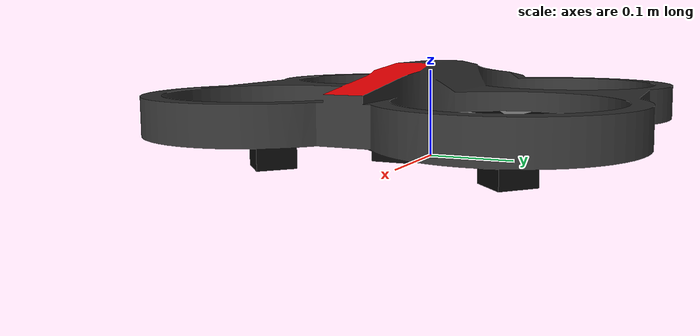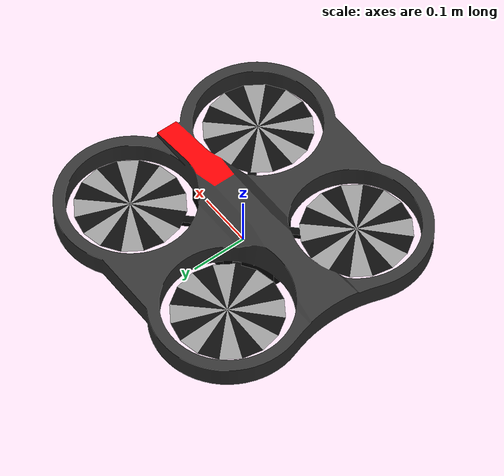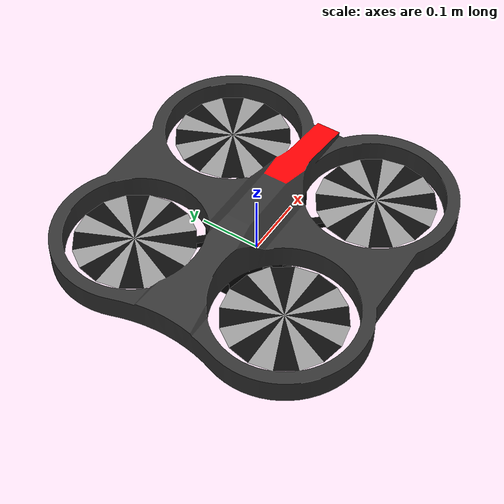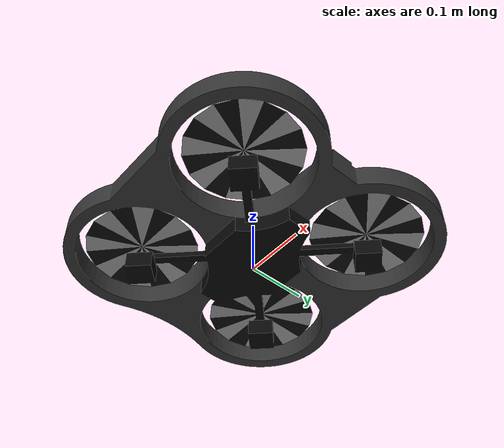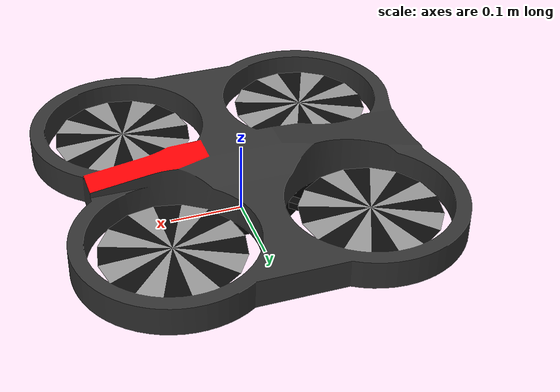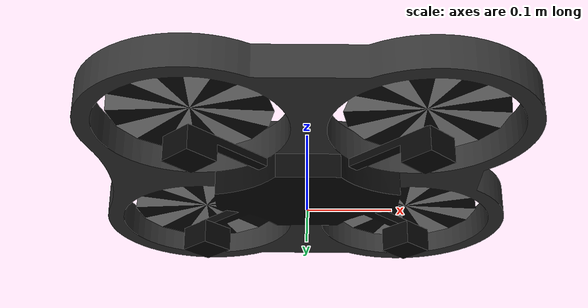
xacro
<?xml version="1.0" ?>
<robot name="sjtu_drone" xmlns:xacro="http://www.ros.org/wiki/xacro">
  <!-- https://answers.ros.org/question/379014/passing-outside-parameters-into-urdf-file-using-xacro/ -->
  <!-- Need argument to get from launch file -->
  <xacro:arg name="params_path" default="$(find sjtu_drone_bringup)/config/drone.yaml"/>

  <!-- Need seperate property for xacro inorder processing -->
  <xacro:property name="params_path" value="$(arg params_path)"/>

  <!-- Read in the yaml dict as mp (short for model parameters) -->
  <xacro:property name="mp" value="${xacro.load_yaml(params_path)}"/>

  <xacro:property name="M_PI" value="3.14159265359" />

  <link name="base_footprint"/>
  <joint name="base_footprint_joint" type="fixed">
    <origin rpy="0 0 0" xyz="0 0 0"/>
    <parent link="base_footprint"/>
    <child link="base_link"/>
  </joint>

  <link name="base_link">
    <inertial>
      <mass value="1.477"/>
      <origin rpy="0 0 0" xyz="0 0 0"/>
      <inertia ixx="0.1152" ixy="0" ixz="0" iyy="0.1152" iyz="0" izz="0.218"/>
    </inertial>
    <collision name="sjtu_drone_collision">
      <origin rpy="0 0 0" xyz="0   0   0.04"/>
      <geometry>
        <mesh filename="file://$(find sjtu_drone_description)/models/sjtu_drone/quadrotor_4.stl"/>
      </geometry>
    </collision>
    <visual name="sjtu_drone_visual">
      <origin rpy="0 0 0" xyz="0   0   0.04"/>
      <geometry>
        <mesh filename="file://$(find sjtu_drone_description)/models/sjtu_drone/quadrotor_4.dae"/>
      </geometry>
    </visual>
  </link>

  <joint name="sonar_joint" type="fixed">
    <parent link="base_link" />
    <child link="sonar_link" />
    <origin rpy="0 ${M_PI/2} 0" xyz="0 0 0"/>
  </joint>
  <link name="sonar_link"/>

  <joint name="front_cam_joint" type="fixed">
    <origin rpy="0 0 0" xyz="0.2 0 0"/>
    <parent link="base_link" />
    <child link="front_cam_link" />
  </joint>

  <link name="front_cam_link"/>

  <joint name="front_cam_optical_joint" type="fixed">
    <origin rpy="-1.5708 0 -1.5708" xyz="0 0 0"/>
    <parent link="front_cam_link"/>
    <child link="front_cam_optical_frame"/>
  </joint>

  <link name="front_cam_optical_frame"/>

  <joint name="bottom_cam_joint" type="fixed">
    <origin rpy="0 ${M_PI/2} 0" xyz="0 0 0"/>
    <parent link="base_link" />
    <child link="bottom_cam_link" />
  </joint>
  <link name="bottom_cam_link"/>

  <gazebo>
    <plugin name='simple_drone' filename='libplugin_drone.so'>
      <ros>
        <namespace>${mp['namespace']}</namespace>
        <remapping>cmd_vel:=cmd_vel</remapping>
        <remapping>imu:=imu</remapping>
        <remapping>sonar:=sonar</remapping>
        <remapping>camera_front:=camera_front</remapping>
        <remapping>camera_bottom:=camera_bottom</remapping>
        <remapping>camera_front_info:=camera_front_info</remapping>
        <remapping>camera_bottom_info:=camera_bottom_info</remapping>
        <remapping>gps:=gps</remapping>
      </ros>

      <bodyName>base_link</bodyName>
      <pub_odom>true</pub_odom>
      <rollpitchProportionalGain>${mp['rollpitchProportionalGain']}</rollpitchProportionalGain>
      <rollpitchDifferentialGain>${mp['rollpitchDifferentialGain']}</rollpitchDifferentialGain>
      <rollpitchLimit>${mp['rollpitchLimit']}</rollpitchLimit>
      <yawProportionalGain>${mp['yawProportionalGain']}</yawProportionalGain>
      <yawDifferentialGain>${mp['yawDifferentialGain']}</yawDifferentialGain>
      <yawLimit>${mp['yawLimit']}</yawLimit>
      <velocityXYProportionalGain>${mp['velocityXYProportionalGain']}</velocityXYProportionalGain>
      <velocityXYDifferentialGain>${mp['velocityXYDifferentialGain']}</velocityXYDifferentialGain>
      <velocityXYLimit>${mp['velocityXYLimit']}</velocityXYLimit>
      <velocityZProportionalGain>${mp['velocityZProportionalGain']}</velocityZProportionalGain>
      <velocityZIntegralGain>${mp['velocityZIntegralGain']}</velocityZIntegralGain>
      <velocityZDifferentialGain>${mp['velocityZDifferentialGain']}</velocityZDifferentialGain>
      <velocityZLimit>${mp['velocityZLimit']}</velocityZLimit>
      <positionXYProportionalGain>${mp['positionXYProportionalGain']}</positionXYProportionalGain>
      <positionXYDifferentialGain>${mp['positionXYDifferentialGain']}</positionXYDifferentialGain>
      <positionXYIntegralGain>${mp['positionXYIntegralGain']}</positionXYIntegralGain>
      <positionXYLimit>${mp['positionXYLimit']}</positionXYLimit>
      <positionZProportionalGain>${mp['positionZProportionalGain']}</positionZProportionalGain>
      <positionZDifferentialGain>${mp['positionZDifferentialGain']}</positionZDifferentialGain>
      <positionZIntegralGain>${mp['positionZIntegralGain']}</positionZIntegralGain>
      <positionZLimit>${mp['positionZLimit']}</positionZLimit>
      <maxForce>${mp['maxForce']}</maxForce>
      <motionSmallNoise>${mp['motionSmallNoise']}</motionSmallNoise>
      <motionDriftNoise>${mp['motionDriftNoise']}</motionDriftNoise>
      <motionDriftNoiseTime>${mp['motionDriftNoiseTime']}</motionDriftNoiseTime>
    </plugin>
  </gazebo>

  <!-- Sensors -->
  <!-- IMU sensor in 100fps -->
  <gazebo reference="base_link">
    <sensor name='sensor_imu' type='imu'>
      <always_on> 1 </always_on>
      <visualize>1</visualize>
      <update_rate> 100 </update_rate>
      <pose> 0 0 0 0 0 0 </pose>
      <imu>
        <noise>
          <type>gaussian</type>
          <rate>
            <mean> 0 </mean>
            <stddev> 0.01 </stddev>
          </rate>
          <accel>
            <mean> 0 </mean>
            <stddev> 0.01 </stddev>
          </accel>
        </noise>
      </imu>
      <plugin name='imu' filename='libgazebo_ros_imu_sensor.so'>
        <ros>
          <namespace>${mp['namespace']}</namespace>
        </ros>
        <initial_orientation_as_reference>false</initial_orientation_as_reference>
        <frame_name>${mp['namespace']}/base_link</frame_name>
      </plugin>
    </sensor>
  </gazebo>

  <!-- Sonar sensor in 100fps -->
  <gazebo reference="sonar_link">
    <sensor name="sonar" type="ray">
      <always_on>1</always_on>
      <visualize>1</visualize>
      <update_rate>30</update_rate>
      <ray>
        <scan>
          <horizontal>
            <samples>5</samples>
            <resolution>1.000000</resolution>
            <min_angle>-0.12</min_angle>
            <max_angle>0.12</max_angle>
          </horizontal>
          <vertical>
            <samples>5</samples>
            <resolution>1.000000</resolution>
            <min_angle>-0.12</min_angle>
            <max_angle>0.12</max_angle>
          </vertical>
        </scan>
        <range>
          <min>0.02</min>
          <max>10</max>
          <resolution>0.01</resolution>
        </range>
        <noise>
          <type>gaussian</type>
          <mean>0.0</mean>
          <stddev>0.01</stddev>
        </noise>
      </ray>
      <plugin name="sonar" filename="libgazebo_ros_ray_sensor.so">
        <ros>
          <namespace>${mp['namespace']}</namespace>
        </ros>
        <frame_name>${mp['namespace']}/sonar_link</frame_name>
        <output_type>sensor_msgs/Range</output_type>
        <radiation_type>ultrasound</radiation_type>
      </plugin>
    </sensor>
  </gazebo>

  <gazebo reference="front_cam_link">
    <sensor name="front_camera" type="depth">
      <always_on>true</always_on>
      <visualize>true</visualize>
      <update_rate>30</update_rate>
      <camera>
        <horizontal_fov>1.02974</horizontal_fov>
          <image>
            <width>1920</width>
            <height>1080</height>
            <format>R8G8B8</format>
          </image>
          <clip>
            <near>0.2</near>
            <far>300</far>
          </clip>
        <noise>
          <type>gaussian</type>
          <mean>0.0</mean>
          <stddev>0.01</stddev>
        </noise>
      </camera>
      <plugin name="camera_front" filename="libgazebo_ros_camera.so">
        <ros>
          <namespace>${mp['namespace']}</namespace>
        </ros>
        <frame_name>${mp['namespace']}/front_cam_optical_frame</frame_name>
        <camera_name>front</camera_name>
        <hack_baseline>0.07</hack_baseline>
      </plugin>
    </sensor>
  </gazebo>

  <!-- downward looking camera -->
  <gazebo reference="bottom_cam_link">
    <sensor name="down_camera" type="camera">
      <always_on>1</always_on>
      <visualize>1</visualize>
      <update_rate>15</update_rate>
      <camera>
        <horizontal_fov>1.047</horizontal_fov>
        <image>
          <width>640</width>
          <height>360</height>
          <format>R8G8B8</format>
        </image>
        <clip>
          <near>0.1</near>
          <far>100</far>
        </clip>
        <noise>
          <type>gaussian</type>
          <mean>0.0</mean>
          <stddev>0.01</stddev>
        </noise>
      </camera>
      <plugin name="camera_bottom" filename="libgazebo_ros_camera.so">
        <ros>
          <namespace>${mp['namespace']}</namespace>
        </ros>
        <frame_name>${mp['namespace']}/bottom_cam_link</frame_name>
        <camera_name>bottom</camera_name>
        <hack_baseline>0.07</hack_baseline>
      </plugin>
    </sensor>
  </gazebo>

  <gazebo reference="base_link">
    <sensor name="gps" type="gps">
      <always_on>1</always_on>
      <update_rate>30</update_rate>
      <gps>
        <position_sensing>
          <horizontal>
            <noise type="gaussian">
              <mean>0.0</mean>
              <stddev>2e-4</stddev>
            </noise>
          </horizontal>
          <vertical>
            <noise type="gaussian">
              <mean>0.0</mean>
              <stddev>2e-4</stddev>
            </noise>
          </vertical>
        </position_sensing>
      </gps>
      <plugin name="gps" filename="libgazebo_ros_gps_sensor.so">
        <ros>
          <namespace>${mp['namespace']}</namespace>
          <remapping>~/out:=~/nav</remapping>
        </ros>
        <frame_name>${mp['namespace']}/base_link</frame_name>
      </plugin>
    </sensor>
  </gazebo>

  <gazebo reference="base_link">
    <sensor name="collision_sensor" type="contact">
      <update_rate>100.0</update_rate>
      <always_on>true</always_on>
      <contact>
        <collision>base_footprint_fixed_joint_lump__sjtu_drone_collision_collision</collision>
      </contact>
      <plugin name="collision_plugin" filename="libgazebo_ros_bumper.so">
        <ros>
          <namespace>${mp['namespace']}</namespace>
        </ros>
        <frame_name>${mp['namespace']}/base_link</frame_name>
      </plugin>
    </sensor>
  </gazebo>
</robot>
